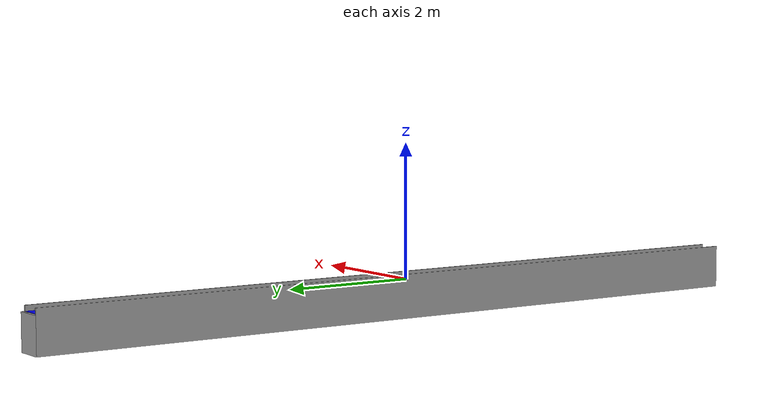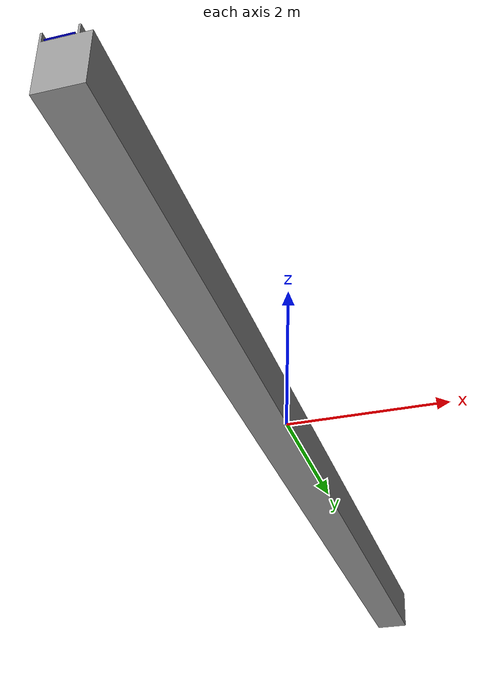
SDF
<?xml version="1.0"?>

<sdf version='1.7'>
  <model name='conveyor_belt'>
    <static>1</static>
    <link name='base_link'>
      <pose relative_to="__model__">0 6 0 0 0 0</pose>
      <inertial>
        <mass>6.06</mass>
        <inertia>
            <ixx>0.002731</ixx>
            <ixy>0</ixy>
            <ixz>0</ixz>
            <iyy>0.032554</iyy>
            <iyz>1.5e-05</iyz>
            <izz>0.031391</izz>
        </inertia>
      </inertial>
      <visual name="base_visual">
        <geometry>
          <mesh>
            <scale>0.001 0.01 0.001</scale>
            <uri>model://conveyor_belt/meshes/conveyor_belt.dae</uri>
          </mesh>
        </geometry>
        <material>
          <ambient>0.6 0.6 0.6 1</ambient>
          <diffuse>0.6 0.6 0.6 1</diffuse>
          <specular>0.8 0.8 0.8 1</specular>
        </material>
      </visual>
      <collision name="base_collision">
        <geometry>
          <mesh>
            <scale>0.001 0.01 0.001</scale>
            <uri>model://conveyor_belt/meshes/conveyor_belt.dae</uri>
          </mesh>
        </geometry>
        <surface>
          <friction>
            <ode>
              <mu>0</mu>
              <mu2>0</mu2>
              <fdir1>0 0 0</fdir1>
            </ode>
          </friction>
        </surface>
      </collision>
    </link>
    <link name="belt_link">
      <gravity>1</gravity>
      <kinematic>0</kinematic>
      <pose relative_to="__model__">0 0 0.02 0 0 1.570796326794896619 </pose>
      <visual name="belt_visual">
        <geometry>
          <box>
            <size>12 0.26 0.0075</size>
          </box>
        </geometry>
        <material>
          <ambient>0 0.0 1.0 1</ambient>
          <diffuse>0 0.0 1.0 1</diffuse>
          <specular>0.8 0.8 0.8 1</specular>
        </material>
      </visual>
      <collision name="belt_collision">
        <geometry>
          <box>
            <size>12 0.26 0.0075</size>
          </box>
        </geometry>
        <surface>
          <friction>
            <ode>
              <mu>0.7</mu>
              <mu2>150</mu2>
              <fdir1>0 1 0</fdir1>
            </ode>
          </friction>
        </surface>
      </collision>
    </link>

    <plugin filename="gz-sim-track-controller-system"
            name="gz::sim::systems::TrackController">
      <link>belt_link</link>
      <odometry_publish_frequency>30</odometry_publish_frequency>
    </plugin>
  </model>
</sdf>
